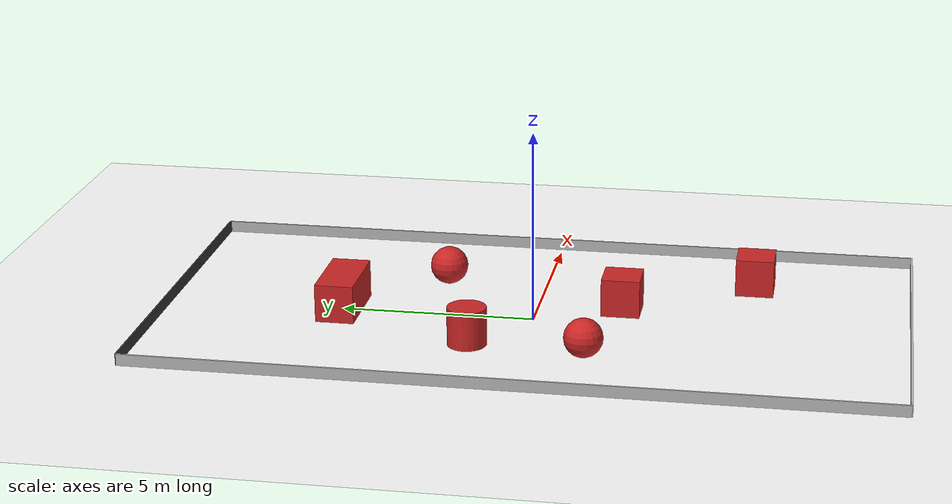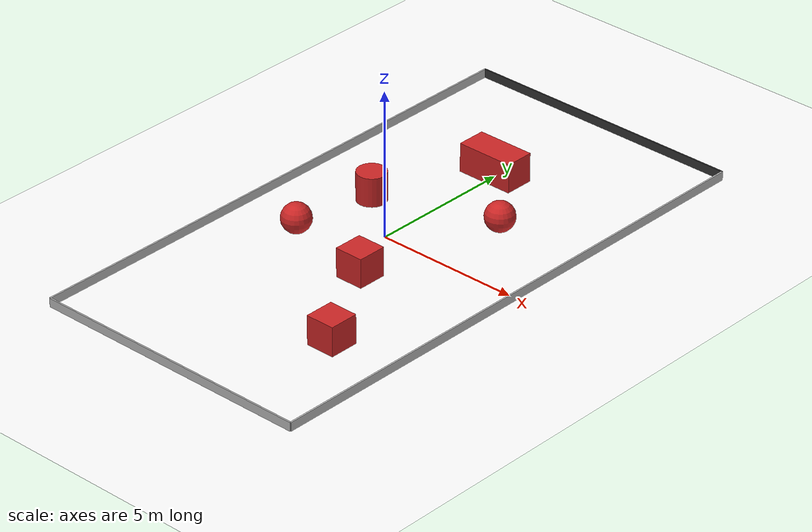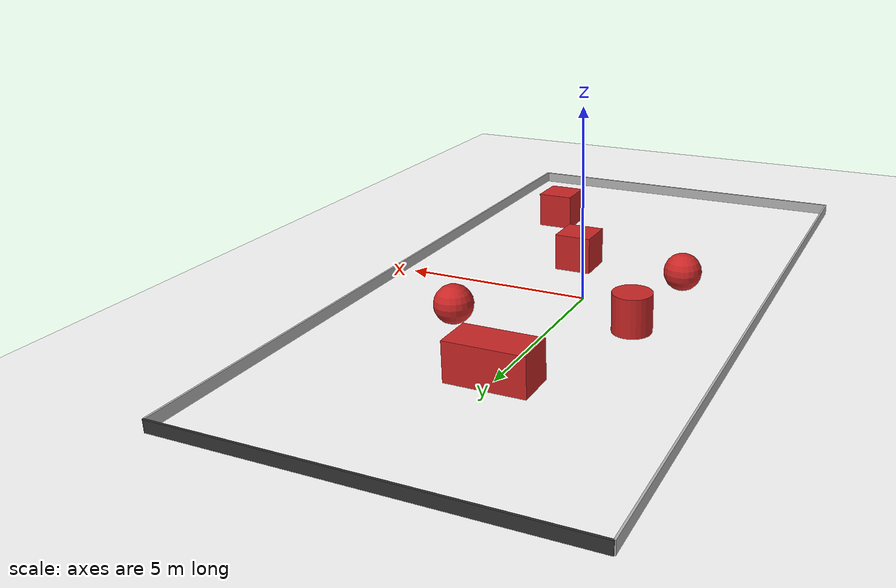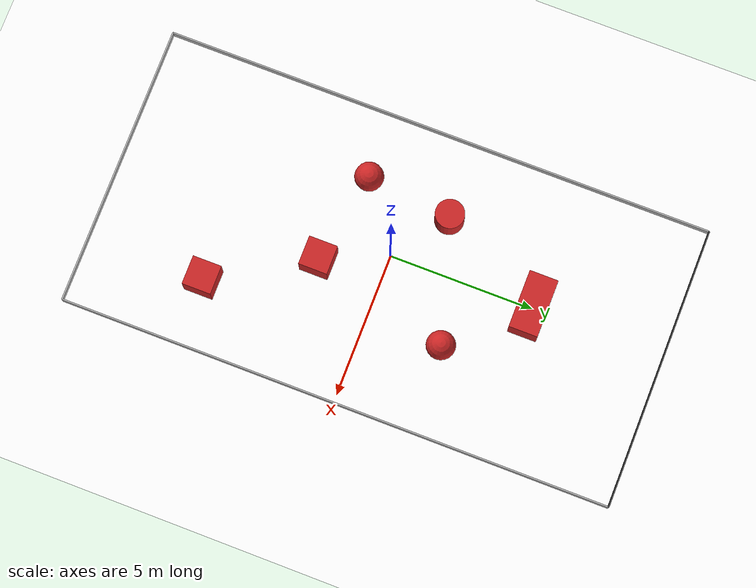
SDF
<sdf version="1.7">
 <world name="default">
  <plugin name="gazebo_ros_state" filename="libgazebo_ros_state.so"/>
  <light name="sun" type="directional">
   <pose>0 0 10 0 -0 0</pose>
   <diffuse>0.8 0.8 0.8 1</diffuse>
   <specular>0.2 0.2 0.2 1</specular>
   <attenuation>
    <range>1000</range>
    <constant>0.9</constant>
    <linear>0.01</linear>
    <quadratic>0.001</quadratic>
   </attenuation>
   <direction>-0.5 0.1 -0.9</direction>
   <spot><inner_angle>0</inner_angle><outer_angle>0</outer_angle><falloff>0</falloff></spot>
  </light>
  <model name="ground_plane">
   <static>1</static>
   <link name="link">
    <collision name="collision">
     <geometry><plane><normal>0 0 1</normal><size>5.0292 9.5</size></plane></geometry>
     <surface><friction><ode><mu>100</mu><mu2>50</mu2></ode></friction></surface>
    </collision>
    <visual name="visual">
     <cast_shadows>0</cast_shadows>
     <geometry><plane><normal>0 0 1</normal><size>15 25</size></plane></geometry>
     <material><ambient>1 1 1 1</ambient><diffuse>1 1 1 1</diffuse><specular>0.1 0.1 0.1 1</specular></material>
    </visual>
   </link>
  </model>
  <gravity>0 0 -9.8</gravity>
  <magnetic_field>6e-06 2.3e-05 -4.2e-05</magnetic_field>
  <atmosphere type="adiabatic"/>
  <physics type="ode">
   <max_step_size>0.001</max_step_size>
   <real_time_factor>1</real_time_factor>
   <real_time_update_rate>1000</real_time_update_rate>
  </physics>
  <scene><ambient>1 1 0.8 1</ambient><background>1 1 0 1</background><shadows>1</shadows></scene>
  <spherical_coordinates>
   <surface_model>EARTH_WGS84</surface_model>
   <latitude_deg>0</latitude_deg>
   <longitude_deg>0</longitude_deg>
   <elevation>0</elevation>
   <heading_deg>90</heading_deg>
  </spherical_coordinates>
  <model name="unit_sphere">
   <static>true</static>
   <pose>-2.1646 -1.59946 0.5 0 -0 0</pose>
   <link name="link">
    <inertial>
     <mass>1</mass>
     <inertia><ixx>0.1</ixx><ixy>0</ixy><ixz>0</ixz><iyy>0.1</iyy><iyz>0</iyz><izz>0.1</izz></inertia>
    </inertial>
    <collision name="collision"><geometry><sphere><radius>0.5</radius></sphere></geometry></collision>
    <visual name="visual">
     <geometry><sphere><radius>0.5</radius></sphere></geometry>
     <material>
      <script><name>Gazebo/Red</name><uri>file://media/materials/scripts/gazebo.material</uri></script>
     </material>
    </visual>
   </link>
  </model>
  <model name="unit_cylinder">
   <static>true</static>
   <pose>-1.83261 1.382888  0.499997 3e-06 4e-06 -0</pose>
   <link name="link">
    <inertial>
     <mass>1</mass>
     <inertia><ixx>0.145833</ixx><ixy>0</ixy><ixz>0</ixz><iyy>0.145833</iyy><iyz>0</iyz><izz>0.125</izz></inertia>
    </inertial>
    <collision name="collision">
     <geometry><cylinder><radius>0.5</radius><length>1</length></cylinder></geometry>
    </collision>
    <visual name="visual">
     <geometry><cylinder><radius>0.5</radius><length>1</length></cylinder></geometry>
     <material>
      <script><name>Gazebo/Red</name><uri>file://media/materials/scripts/gazebo.material</uri></script>
     </material>
    </visual>
   </link>
  </model>
  <model name="unit_box">
   <static>true</static>
   <pose>1.01344 -2.17852 0.499995 -1e-05 -0 0</pose>
   <link name="link">
    <inertial>
     <mass>1</mass>
     <inertia>
      <ixx>0.166667</ixx>
      <ixy>0</ixy>
      <ixz>0</ixz>
      <iyy>0.166667</iyy>
      <iyz>0</iyz>
      <izz>0.166667</izz>
     </inertia>
    </inertial>
    <collision name="collision"><geometry><box><size>1 1 1</size></box></geometry></collision>
    <visual name="visual">
     <geometry><box><size>1 1 1</size></box></geometry>
     <material>
      <script><name>Gazebo/Red</name><uri>file://media/materials/scripts/gazebo.material</uri></script>
     </material>
    </visual>
   </link>
  </model>
  <model name="unit_sphere_0">
   <static>true</static>
   <pose>2.29967 2.6355 0.5 0 -0 0</pose>
   <link name="link">
    <inertial>
     <mass>1</mass>
     <inertia><ixx>0.1</ixx><ixy>0</ixy><ixz>0</ixz><iyy>0.1</iyy><iyz>0</iyz><izz>0.1</izz></inertia>
    </inertial>
    <collision name="collision"><geometry><sphere><radius>0.5</radius></sphere></geometry></collision>
    <visual name="visual">
     <geometry><sphere><radius>0.5</radius></sphere></geometry>
     <material>
      <script><name>Gazebo/Red</name><uri>file://media/materials/scripts/gazebo.material</uri></script>
     </material>
    </visual>
   </link>
  </model>
  <model name="unit_box_side">
   <static>1</static>
   <pose>0 5 0.5 0 0 0</pose>
   <link name="link">
    <collision name="collision"><geometry><box><size>2.0 1.0 1.0</size></box></geometry></collision>
    <inertial>
     <mass>1.0</mass>
     <inertia><ixx>0.166</ixx><iyy>0.166</iyy><izz>0.166</izz><ixy>0</ixy><ixz>0</ixz><iyz>0</iyz></inertia>
    </inertial>
    <visual name="visual">
     <geometry><box><size>2.0 1.0 1.0</size></box></geometry>
     <material>
      <script><name>Gazebo/Red</name><uri>file://media/materials/scripts/gazebo.material</uri></script>
     </material>
    </visual>
   </link>
  </model>
  <model name="unit_box_side02">
   <static>1</static>
   <pose>3 -5.5 0.5 0 0 0</pose>
   <link name="link">
    <collision name="collision"><geometry><box><size>1.0 1.0 1.0</size></box></geometry></collision>
    <inertial>
     <mass>1.0</mass>
     <inertia><ixx>0.166</ixx><iyy>0.166</iyy><izz>0.166</izz><ixy>0</ixy><ixz>0</ixz><iyz>0</iyz></inertia>
    </inertial>
    <visual name="visual">
     <geometry><box><size>1.0 1.0 1.0</size></box></geometry>
     <material>
      <script><name>Gazebo/Red</name><uri>file://media/materials/scripts/gazebo.material</uri></script>
     </material>
    </visual>
   </link>
  </model>
  <model name="fence_north">
   <static>true</static>
   <pose>0.4 9.6 0.15 0 0 0</pose>
   <link name="link">
    <collision name="col">
     <geometry><box><size>9.8 0.05 0.30</size></box></geometry>
     <surface><friction><ode><mu>1.0</mu><mu2>1.0</mu2></ode></friction></surface>
    </collision>
    <visual name="vis">
     <geometry><box><size>9.8 0.05 0.30</size></box></geometry>
     <material><ambient>0.2 0.2 0.2 1</ambient></material>
    </visual>
   </link>
  </model>
  <model name="fence_south">
   <static>true</static>
   <pose>0.4 -9.6 0.15 0 0 0</pose>
   <link name="link">
    <collision name="col">
     <geometry><box><size>9.8 0.05 0.30</size></box></geometry>
     <surface><friction><ode><mu>1.0</mu><mu2>1.0</mu2></ode></friction></surface>
    </collision>
    <visual name="vis"><geometry><box><size>9.8 0.05 0.30</size></box></geometry></visual>
   </link>
  </model>
  <model name="fence_east">
   <static>true</static>
   <pose>5.3 0.0 0.15 0 0 1.5707963</pose>
   <link name="link">
    <collision name="col">
     <geometry><box><size>19.2 0.05 0.30</size></box></geometry>
     <surface><friction><ode><mu>1.0</mu><mu2>1.0</mu2></ode></friction></surface>
    </collision>
    <visual name="vis"><geometry><box><size>19.2 0.05 0.30</size></box></geometry></visual>
   </link>
  </model>
  <model name="fence_west">
   <static>true</static>
   <pose>-4.5 0.0 0.15 0 0 1.5707963</pose>
   <link name="link">
    <collision name="col">
     <geometry><box><size>19.2 0.05 0.30</size></box></geometry>
     <surface><friction><ode><mu>1.0</mu><mu2>1.0</mu2></ode></friction></surface>
    </collision>
    <visual name="vis"><geometry><box><size>19.2 0.05 0.30</size></box></geometry></visual>
   </link>
  </model>
 </world>
</sdf>
